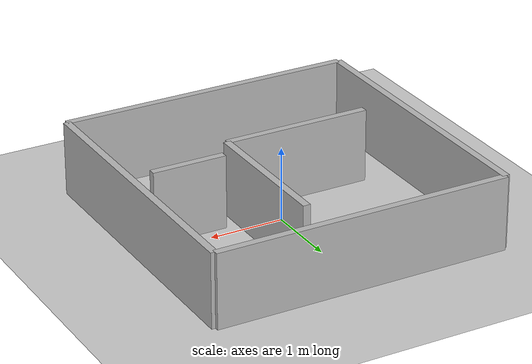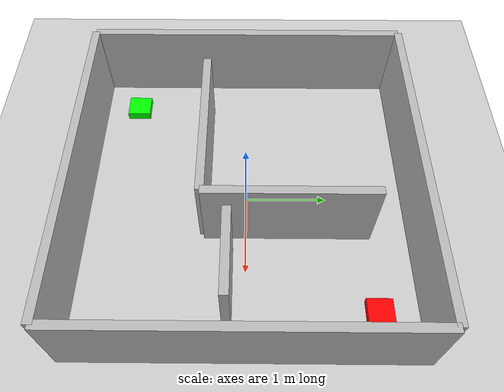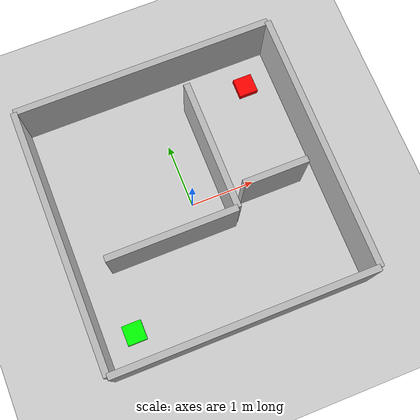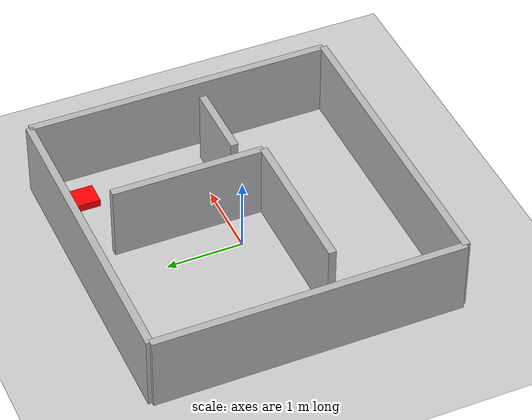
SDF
<?xml version="1.0" ?>
<sdf version="1.6">
  <world name="maze_world">

    <include>
      <uri>model://ground_plane</uri>
    </include>

    <include>
      <uri>model://sun</uri>
    </include>

    <!-- 🟩 START -->
    <model name="start_point">
      <static>true</static>
      <pose>-1.5 -1.5 0.05 0 0 0</pose>
      <link name="link">
        <visual name="visual">
          <geometry>
            <box><size>0.3 0.3 0.1</size></box>
          </geometry>
          <material>
            <ambient>0 1 0 1</ambient>
          </material>
        </visual>
      </link>
    </model>

    <!-- 🟥 GOAL -->
    <model name="goal_point">
      <static>true</static>
      <pose>1.5 1.5 0.05 0 0 0</pose>
      <link name="link">
        <visual name="visual">
          <geometry>
            <box><size>0.3 0.3 0.1</size></box>
          </geometry>
          <material>
            <ambient>1 0 0 1</ambient>
          </material>
        </visual>
      </link>
    </model>

    <!-- 🧱 OUTER WALLS -->

    <!-- top -->
    <model name="wall_top">
      <static>true</static>
      <pose>0 2 0.5 0 0 0</pose>
      <link name="link">
        <collision name="col">
          <geometry><box><size>4 0.1 1</size></box></geometry>
        </collision>
        <visual name="vis">
          <geometry><box><size>4 0.1 1</size></box></geometry>
        </visual>
      </link>
    </model>

    <!-- bottom -->
    <model name="wall_bottom">
      <static>true</static>
      <pose>0 -2 0.5 0 0 0</pose>
      <link name="link">
        <collision name="col">
          <geometry><box><size>4 0.1 1</size></box></geometry>
        </collision>
        <visual name="vis">
          <geometry><box><size>4 0.1 1</size></box></geometry>
        </visual>
      </link>
    </model>

    <!-- left -->
    <model name="wall_left">
      <static>true</static>
      <pose>-2 0 0.5 0 0 1.57</pose>
      <link name="link">
        <collision name="col">
          <geometry><box><size>4 0.1 1</size></box></geometry>
        </collision>
        <visual name="vis">
          <geometry><box><size>4 0.1 1</size></box></geometry>
        </visual>
      </link>
    </model>

    <!-- right -->
    <model name="wall_right">
      <static>true</static>
      <pose>2 0 0.5 0 0 1.57</pose>
      <link name="link">
        <collision name="col">
          <geometry><box><size>4 0.1 1</size></box></geometry>
        </collision>
        <visual name="vis">
          <geometry><box><size>4 0.1 1</size></box></geometry>
        </visual>
      </link>
    </model>

    <!-- 🧩 INNER WALLS (WITH PATHS) -->

    <!-- bottom horizontal (gap on right) -->
    <model name="inner1">
      <static>true</static>
      <pose>-0.5 -0.5 0.5 0 0 0</pose>
      <link name="link">
        <collision name="col">
          <geometry><box><size>2 0.1 1</size></box></geometry>
        </collision>
        <visual name="vis">
          <geometry><box><size>2 0.1 1</size></box></geometry>
        </visual>
      </link>
    </model>

    <!-- vertical wall (gap at bottom) -->
    <model name="inner2">
      <static>true</static>
      <pose>0.5 0.5 0.5 0 0 1.57</pose>
      <link name="link">
        <collision name="col">
          <geometry><box><size>2 0.1 1</size></box></geometry>
        </collision>
        <visual name="vis">
          <geometry><box><size>2 0.1 1</size></box></geometry>
        </visual>
      </link>
    </model>

    <!-- small top blocker (forces turn) -->
    <model name="inner3">
      <static>true</static>
      <pose>1.2 -0.2 0.5 0 0 0</pose>
      <link name="link">
        <collision name="col">
          <geometry><box><size>1 0.1 1</size></box></geometry>
        </collision>
        <visual name="vis">
          <geometry><box><size>1 0.1 1</size></box></geometry>
        </visual>
      </link>
    </model>

  </world>
</sdf>
